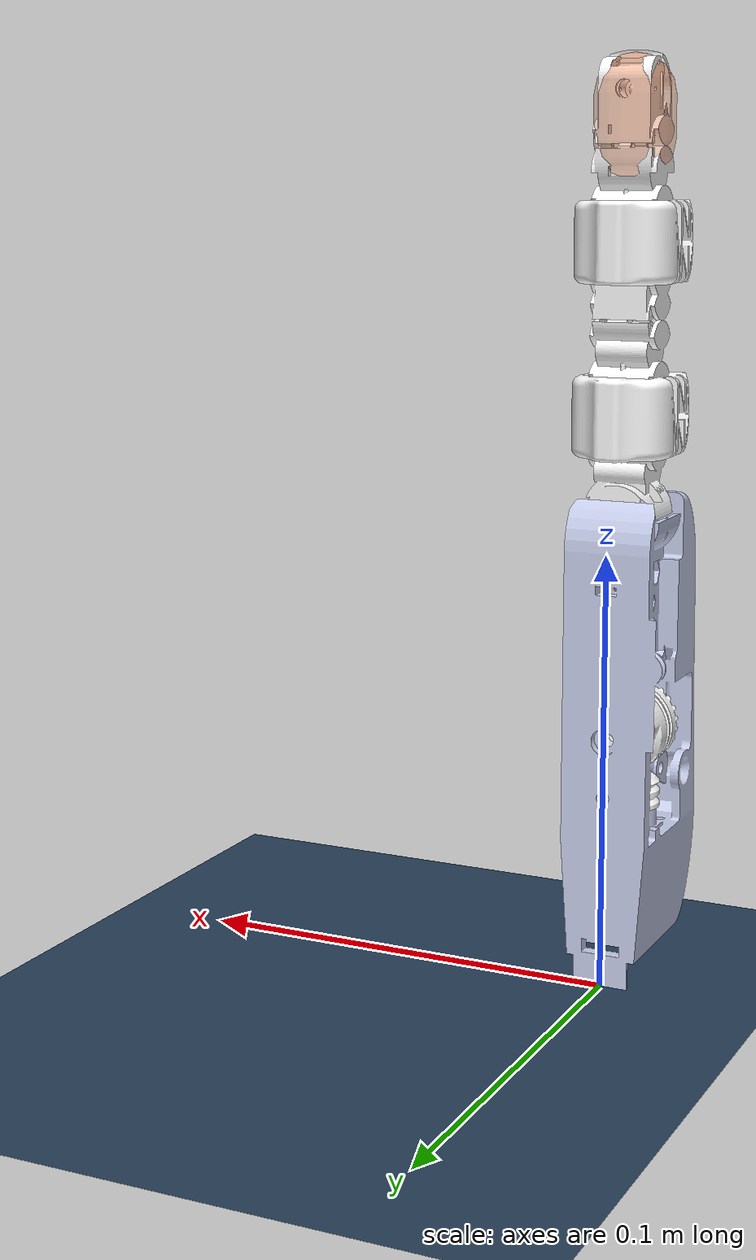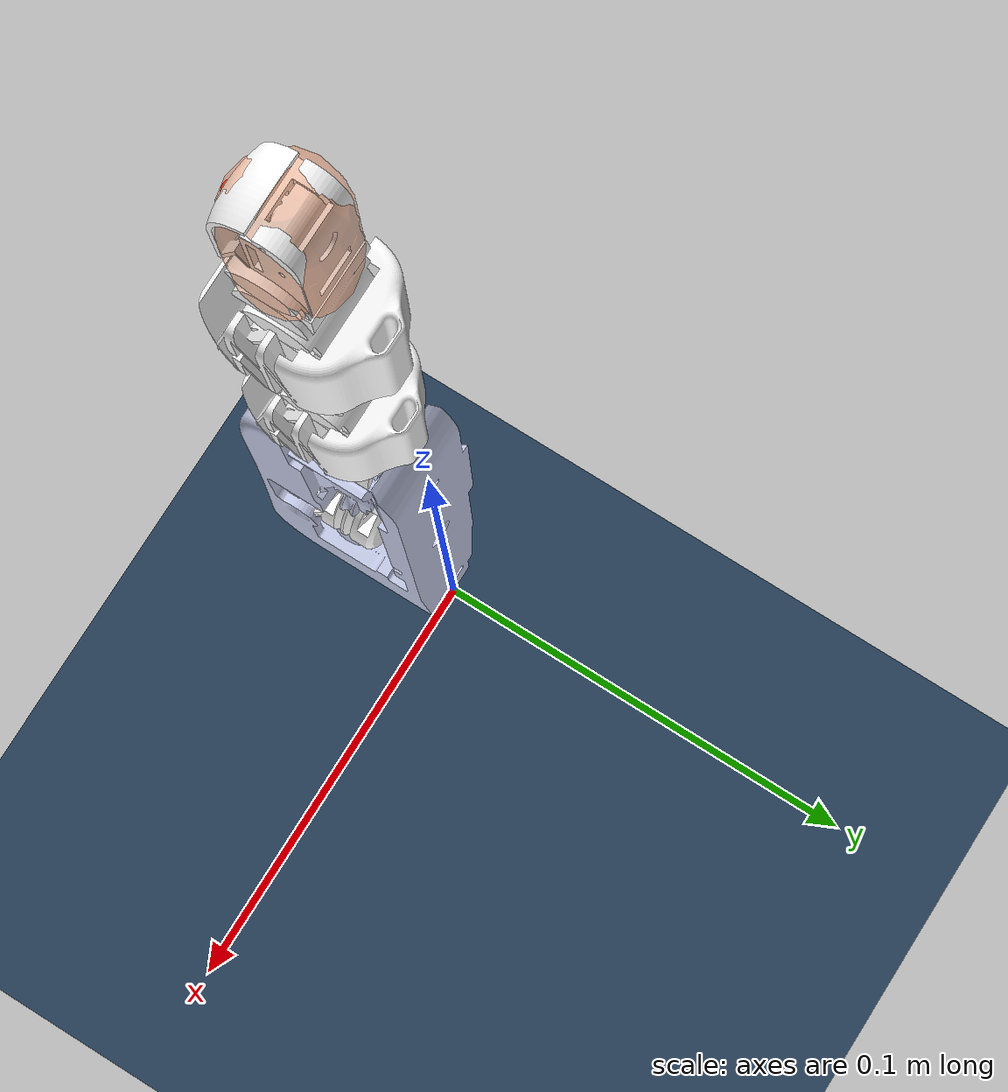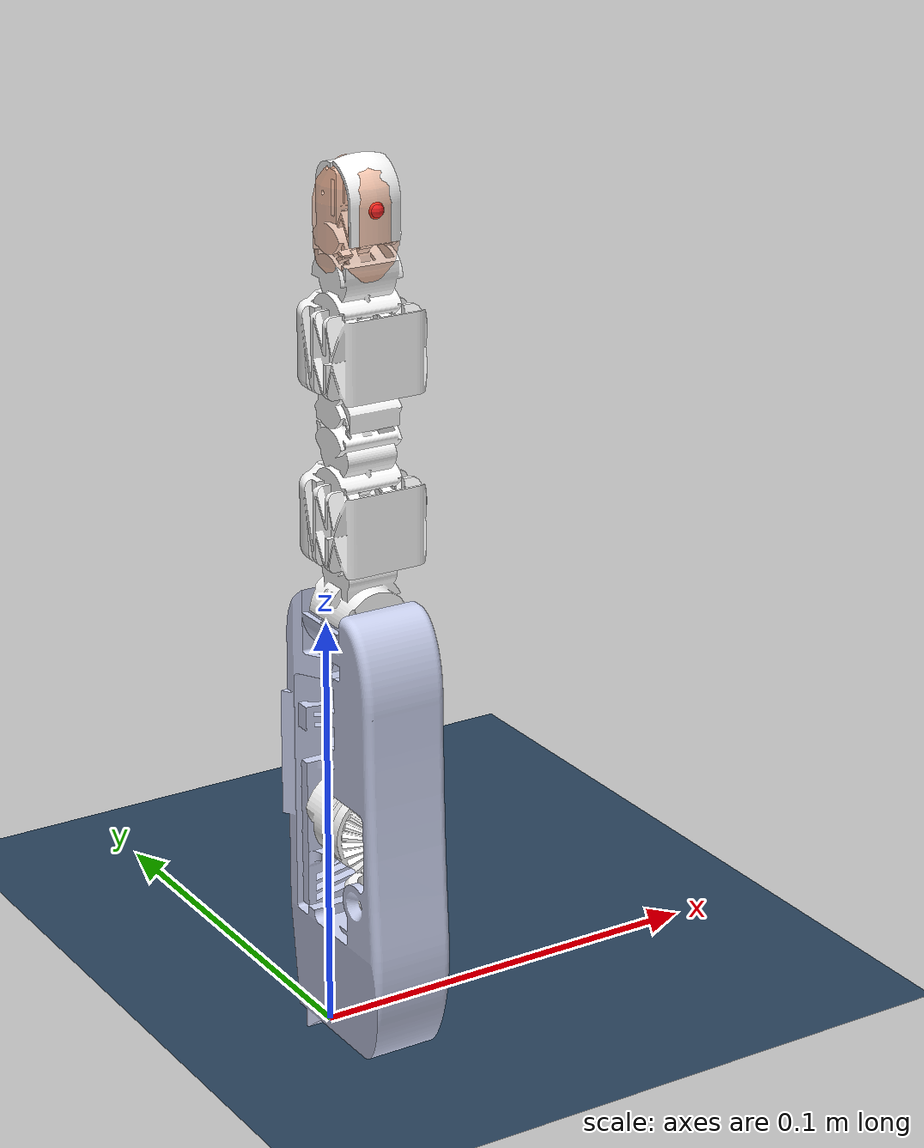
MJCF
<mujoco model="finger_mujoco">

  <compiler angle="radian" meshdir="meshes/" texturedir="texture/"/>

  <option timestep="0.002" iterations="100" apirate="50"/>

  <size njmax="600" nconmax="150" nstack="300000"/>

  <default>
    <joint limited="true" damping="1" frictionloss="0.01" armature=".01"/>
    <position ctrllimited="true" kp="1"/>
  </default>

  <!-- STL meshes exported from SolidWorks with frames preserved [CAD] -->
  <asset>
    <mesh name="palm_link"          file="palm_link.STL"/>
    <mesh name="servo_pulley_link"  file="servo_pulley_link.STL"/>
    <mesh name="motor_pulley_link"  file="motor_pulley_link.STL"/>
    <mesh name="phalanx1_link1_abd" file="phalanx1_link1_abd.STL"/>
    <mesh name="phalanx_link1_prx"  file="phalanx_link1_prx.STL"/>
    <mesh name="phalanx1_link2_prx" file="phalanx1_link2_prx.STL"/>
    <mesh name="phalanx_link1_int"  file="phalanx_link1_int.STL"/>
    <mesh name="phalanx_link2_int"  file="phalanx_link2_int.STL"/>
    <mesh name="phalanx_link3_int"  file="phalanx_link3_int.STL"/>
    <mesh name="phalanx_link1_dis"  file="phalanx_link1_dis.STL"/>
    <texture name="grid" type="2d" builtin="checker"
             rgb1=".1 .2 .3" rgb2=".2 .3 .4" width="300" height="300"/>
    <material name="grid" texture="grid" texrepeat="8 8" reflectance=".2"/>
  </asset>

  <worldbody>
    <geom size=".2 .2 .01" type="plane" material="grid"/>
    <light pos="0 0 .6"/>
    <camera name="closeup" pos="0 -.1 .07" xyaxes="1 0 0 0 1 2"/>

    <!-- PALM — fixed base, no joint. Participates in collision by default. -->
    <geom type="mesh" rgba="0.79216 0.81961 0.93333 1" mesh="palm_link" contype="1" conaffinity="1"/>

    <body name="servo_pulley_link"
          pos="0.00010005 -0.0199 0.038"
          quat="0.692275 0.692277 0.144062 0.144061">
      <inertial pos="0 0.0033461 0"
                quat="0.663108 -0.245537 -0.245537 0.663108"
                mass="0.00064912"
                diaginertia="1.7526e-08 1.17082e-08 1.12928e-08"/>
      <joint name="joint_servo" type="hinge" pos="0 0 0"
             axis="0 1 0" range="-1 1"/>
      <geom type="mesh" rgba="1 1 1 1" mesh="servo_pulley_link"
            contype="0" conaffinity="0"/>
    </body>

    <body name="motor_pulley_link"
          pos="0 -0.0065 0.0575"
          quat="-3.67314e-06 0.999981 -2.2658e-08 -0.00616846">
      <inertial pos="-0.00028931 0.0095592 -0.00028355"
                quat="0.577387 0.126641 0.408197 0.695674"
                mass="0.0053624"
                diaginertia="2.60047e-07 2.57854e-07 2.16879e-07"/>
      <joint name="joint_motor" type="hinge" pos="0 0 0"
             axis="0 1 0" range="-3.14 3.14"/>
      <geom type="mesh" rgba="1 1 1 1" mesh="motor_pulley_link"
            contype="0" conaffinity="0"/>
    </body>

    <!-- MCP ABDUCTION LINK — servo-driven, 107 mm above palm [CAD] -->
    <body name="phalanx1_link1_abd"
          pos="0.00025 -0.0054079 0.10695"
          quat="1.34924e-11 -3.67321e-06 1 -3.67321e-06">
      <inertial pos="-5.9722e-05 -0.0084809 -0.0081966"
                quat="0.0381308 0.680879 -0.0123433 0.731298"
                mass="0.0025141"
                diaginertia="9.34887e-08 6.5377e-08 5.99283e-08"/>
      <!-- joint0_abd: only independent DOF besides joint_motor.
           Driven by joint_servo. Range ±0.7 rad = servo horn travel. -->
      <joint name="joint0_abd" type="hinge" pos="0 0 0"
             axis="0 1 0" range="-0.7 0.7"/>
      <geom type="mesh" rgba="1 1 1 1" mesh="phalanx1_link1_abd"
            contype="0" conaffinity="0"/>

      <body name="phalanx_link1_prx"
            pos="0 -0.0085921 -0.01705"
            quat="0.707105 0 0 0.707108">
        <inertial pos="0.0031611 0.00033176 -0.0057507"
                  quat="0.00309698 0.713211 -0.0011813 0.700942"
                  mass="0.0059145"
                  diaginertia="5.00815e-07 3.7855e-07 3.54575e-07"/>
        <!-- joint1_prx: passive, 4.5:1 coupled to joint_motor [EQ].
             r_pulley/r_rolling = 0.008/0.036 = 4.5:1 reduction. -->
        <joint name="joint1_prx" type="hinge" pos="0 0 0"
               axis="0 1 0" range="-0.7 0.7"/>
        <geom type="mesh" rgba="1 1 1 1" mesh="phalanx_link1_prx"
              contype="0" conaffinity="0"/>

        <!-- PROXIMAL PHALANX BODY 2 (rolling-contact pair second body)
             pos=0.0114 m: [CAD] 11.4 mm rolling-circle pitch. -->
        <body name="phalanx1_link2_prx" pos="0 0 -0.0114">
          <inertial pos="0.00029466 0.00025493 -0.0078726"
                    quat="0.513386 0.492274 -0.481524 0.51209"
                    mass="0.002014"
                    diaginertia="5.96415e-08 4.83638e-08 3.38077e-08"/>
          <!-- joint2_prx: passive, same 4.5:1 ratio [EQ].
               Rolling pair distributes bending to reduce peak stress. -->
          <joint name="joint2_prx" type="hinge" pos="0 0 0"
                 axis="0 1 0" range="-0.7 0.7"/>
          <geom type="mesh" rgba="1 1 1 1" mesh="phalanx1_link2_prx"
                contype="0" conaffinity="0"/>

          <!-- INTERMEDIATE PHALANX BODY 1 (PIP segment)
               pos=0.01555 m: [CAD] proximal-to-intermediate spacing. -->
          <body name="phalanx_link1_int" pos="0 0 -0.01555">
            <inertial pos="0.00043592 0.00033932 -0.005629"
                      quat="0.466195 0.554663 -0.433837 0.535534"
                      mass="0.0015511"
                      diaginertia="5.62669e-08 4.15694e-08 3.61687e-08"/>
            <!-- joint3_int: passive, same 4.5:1 ratio [EQ]. -->
            <joint name="joint3_int" type="hinge" pos="0 0 0"
                   axis="0 1 0" range="-0.7 0.7"/>
            <geom type="mesh" rgba="1 1 1 1" mesh="phalanx_link1_int"
                  contype="0" conaffinity="0"/>

            <!-- INTERMEDIATE PHALANX BODY 2
                 pos=0.0114 m: [CAD] same pitch as proximal section. -->
            <body name="phalanx_link2_int" pos="0 0 -0.0114">
              <inertial pos="0.0033404 0.00030416 -0.0057723"
                        quat="-0.0167526 0.710991 0.020592 0.7027"
                        mass="0.0057585"
                        diaginertia="4.89393e-07 3.70905e-07 3.49772e-07"/>
              <!-- joint4_int: passive, same 4.5:1 ratio [EQ]. -->
              <joint name="joint4_int" type="hinge" pos="0 0 0"
                     axis="0 1 0" range="-0.7 0.7"/>
              <geom type="mesh" rgba="1 1 1 1" mesh="phalanx_link2_int"
                    contype="0" conaffinity="0"/>

              <body name="phalanx_link3_int"
                    pos="0 0 -0.0114"
                    quat="-3.67321e-06 1 0 0">
                <inertial pos="9.7987e-05 -0.00025512 0.0076047"
                          quat="0.525574 0.497518 -0.479196 0.496607"
                          mass="0.0019386"
                          diaginertia="6.11345e-08 4.73321e-08 3.33433e-08"/>
                <joint name="joint5_int" type="hinge" pos="0 0 0"
                       axis="0 -1 0" range="-0.7 0.7"/>
                <geom type="mesh" rgba="1 1 1 1" mesh="phalanx_link3_int"
                      contype="0" conaffinity="0"/>

                <body name="phalanx_link1_dis"
                      pos="0 0 0.0149"
                      quat="-3.67321e-06 1 0 0">
                  <inertial pos="-0.00010858 0.00025287 -0.0094074"
                            quat="0.711685 0.0099199 0.0104214 0.702351"
                            mass="0.0023104"
                            diaginertia="9.94276e-08 9.5898e-08 7.69994e-08"/>
                  <joint name="joint6_dis" type="hinge" pos="0 0 0"
                         axis="0 1 0" range="-0.7 0.7"/>
                  <geom type="mesh" rgba="1 1 1 1" mesh="phalanx_link1_dis"
                        contype="1" conaffinity="1"/>

                  <geom name="cap_dis" type="capsule" pos="0 0 -0.006"
                        size="0.009 0.005" rgba="1.0 0.4 0.1 0.3"
                        contype="1" conaffinity="1" friction="0.9 0.005 0.0001"/>

                  <site name="fingertip"
                        pos="-0.0075 0 -0.01"
                        size="0.002" rgba="1.0 0.15 0.15 0.9"/>

                </body>
              </body>
            </body>
          </body>
        </body>
      </body>
    </body>

  </worldbody>

  <tendon>

    <!-- joint1_prx ↔ joint_motor [EQ] 4.5:1, proximal rolling-contact #1 -->
    <fixed name="T_map_j1" range="-1 1">
      <joint joint="joint1_prx"  coef="0.036"/>
      <joint joint="joint_motor" coef="-0.008"/>
    </fixed>

    <!-- joint2_prx ↔ joint_motor [EQ] 4.5:1, proximal rolling-contact #2 -->
    <fixed name="T_map_j2" range="-1 1">
      <joint joint="joint2_prx"  coef="0.036"/>
      <joint joint="joint_motor" coef="-0.008"/>
    </fixed>

    <!-- joint3_int ↔ joint_motor [EQ] 4.5:1, intermediate #1 -->
    <fixed name="T_map_j3" range="-1 1">
      <joint joint="joint3_int"  coef="0.036"/>
      <joint joint="joint_motor" coef="-0.008"/>
    </fixed>

    <!-- joint4_int ↔ joint_motor [EQ] 4.5:1, intermediate #2 -->
    <fixed name="T_map_j4" range="-1 1">
      <joint joint="joint4_int"  coef="0.036"/>
      <joint joint="joint_motor" coef="-0.008"/>
    </fixed>

    <!-- joint5_int ↔ joint_motor [EQ] 4.5:1, intermediate #3.
         joint5_int axis is flipped (-Y) so positive coef still gives
         correct flexion direction through the cam-follower reversal. -->
    <fixed name="T_map_j5" range="-1 1">
      <joint joint="joint5_int"  coef="0.036"/>
      <joint joint="joint_motor" coef="-0.008"/>
    </fixed>

    <fixed name="T_map_j6" range="-1 1">
      <joint joint="joint6_dis"  coef="0.015"/>
      <joint joint="joint_motor" coef="-0.008"/>
    </fixed>

    <fixed name="T_abd_servo" range="0 1">
      <joint joint="joint_servo" coef="-1"/>
      <joint joint="joint0_abd"  coef="0.98"/>
    </fixed>

  </tendon>

  <equality>
    <tendon name="E_map_j1"    tendon1="T_map_j1"/>
    <tendon name="E_map_j2"    tendon1="T_map_j2"/>
    <tendon name="E_map_j3"    tendon1="T_map_j3"/>
    <tendon name="E_map_j4"    tendon1="T_map_j4"/>
    <tendon name="E_map_j5"    tendon1="T_map_j5"/>
    <tendon name="E_map_j6"    tendon1="T_map_j6"/>
    <tendon name="E_abd_servo" tendon1="T_abd_servo"/>
  </equality>

  <actuator>
    <!-- Abduction servo — controls lateral finger spread -->
    <position name="joint_s_pos"
              joint="joint_servo"
              ctrlrange="-0.3 0.3"
              kp="400"/>

    <!-- Main flexion motor — drives all 6 phalanx joints via cable tendons -->
    <position name="joint_m_pos"
              joint="joint_motor"
              ctrlrange="-0.3 3.14"
              kp="400"/>
  </actuator>

</mujoco>
